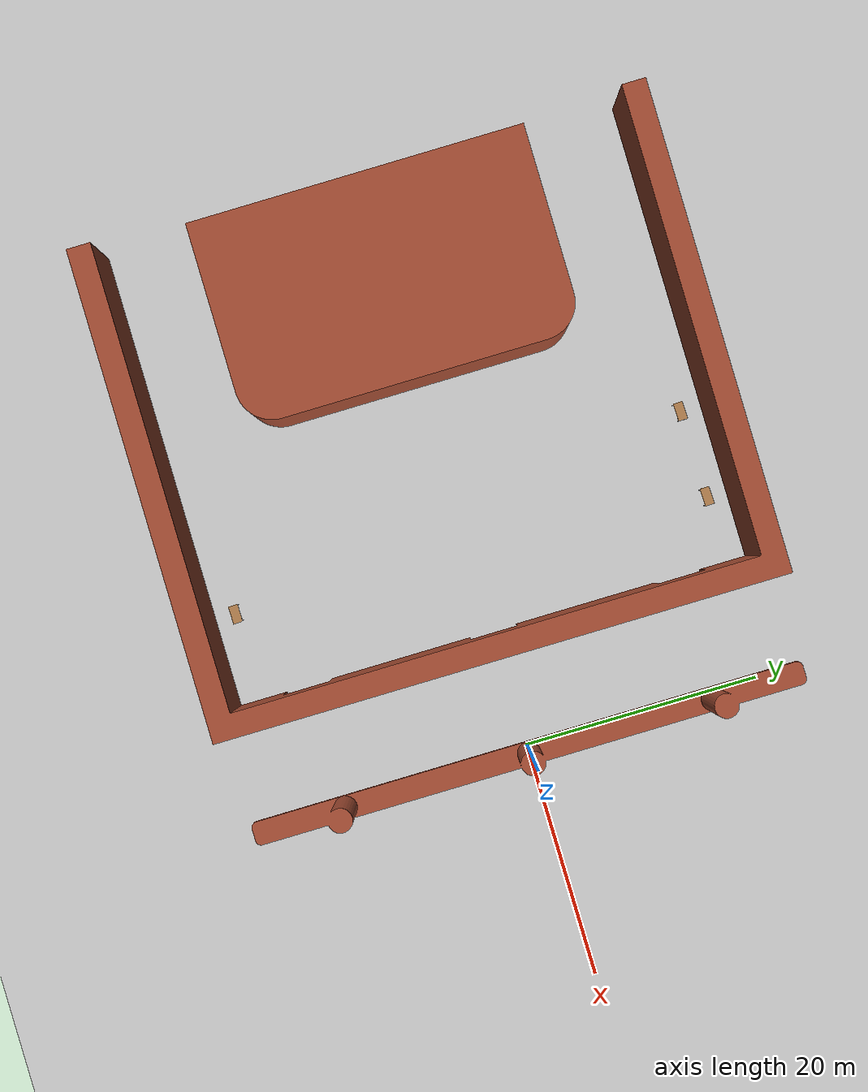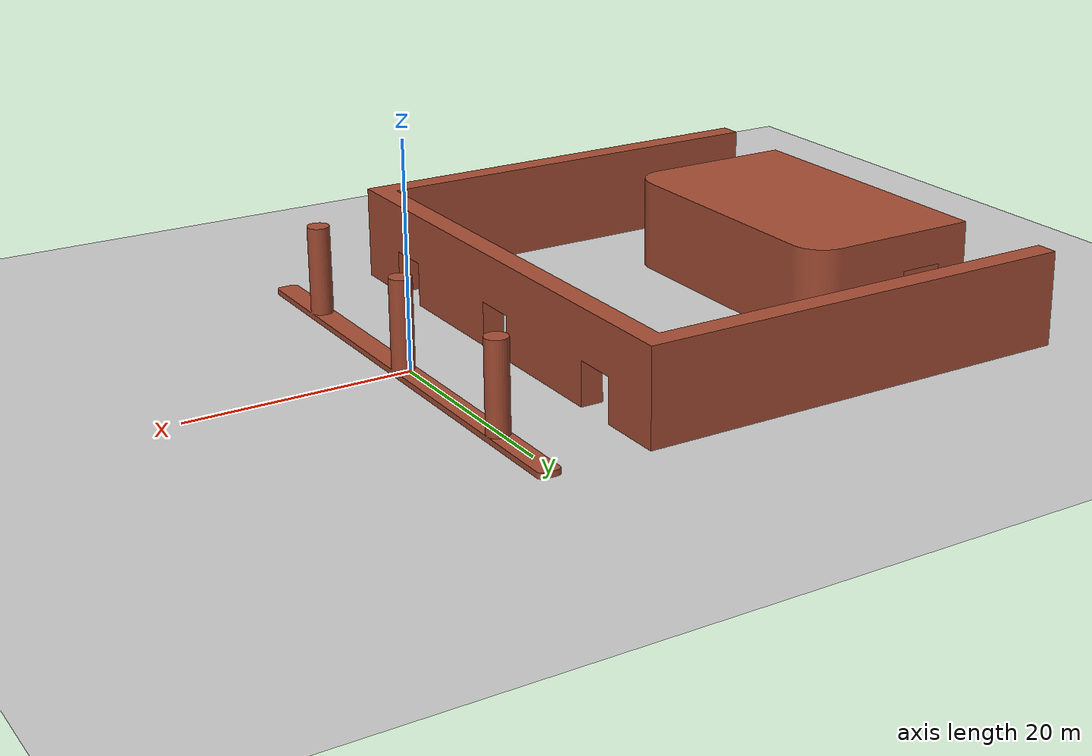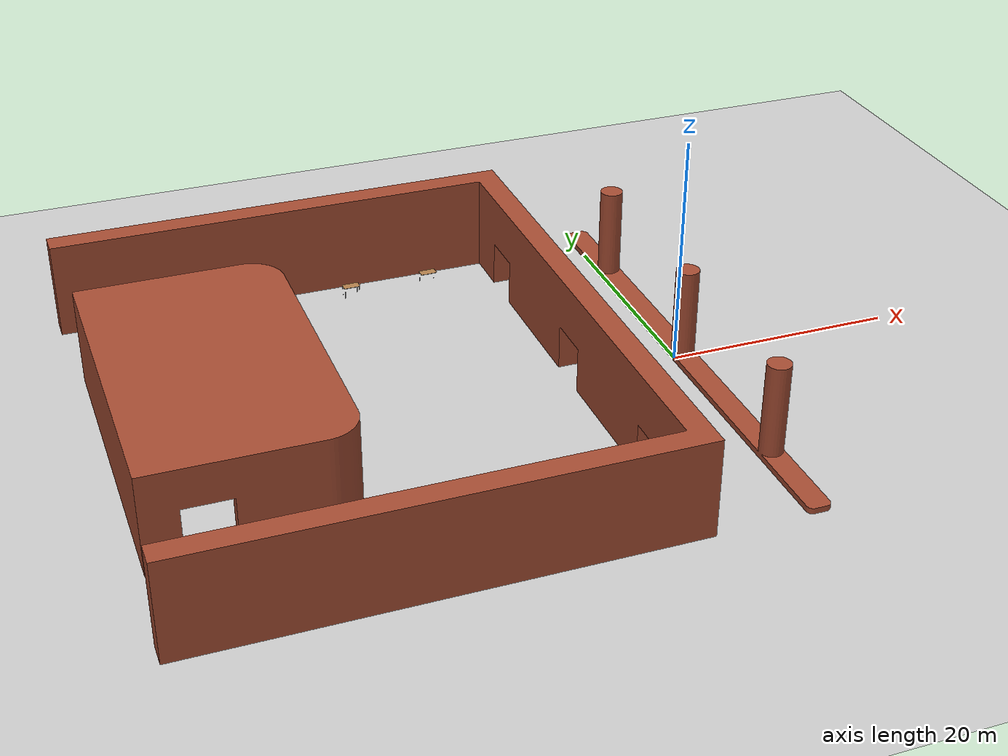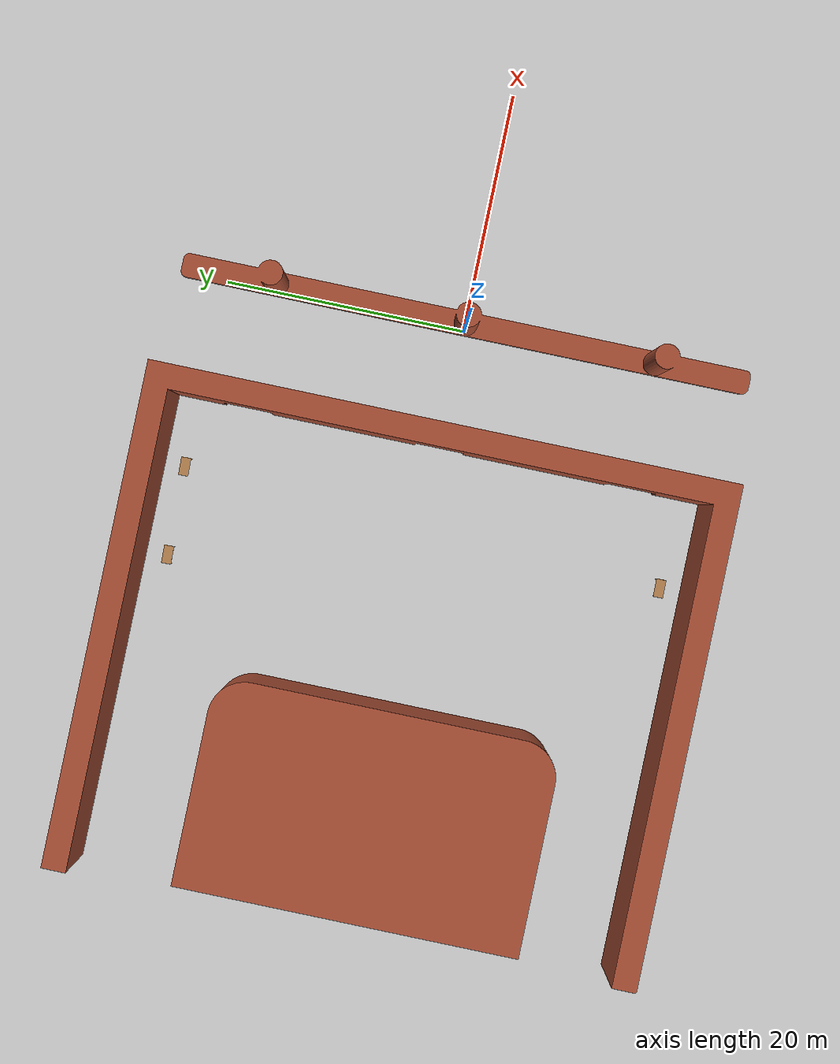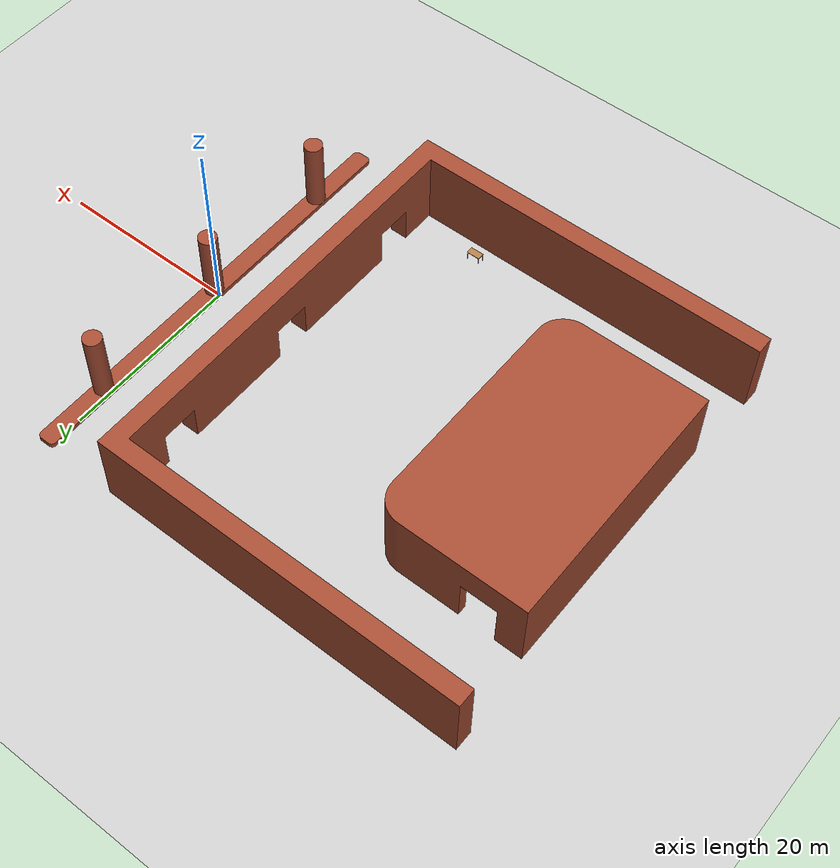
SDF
<sdf version="1.7">
 <world name="default">
  <light name="sun" type="directional">
   <pose>0 0 10 0 -0 0</pose>
   <diffuse>0.8 0.8 0.8 1</diffuse>
   <specular>0.2 0.2 0.2 1</specular>
   <attenuation>
    <range>1000</range>
    <constant>0.9</constant>
    <linear>0.01</linear>
    <quadratic>0.001</quadratic>
   </attenuation>
   <direction>-0.5 0.1 -0.9</direction>
   <spot><inner_angle>0</inner_angle><outer_angle>0</outer_angle><falloff>0</falloff></spot>
  </light>
  <model name="ground_plane">
   <static>1</static>
   <link name="link">
    <collision name="collision">
     <geometry><plane><normal>0 0 1</normal><size>100 100</size></plane></geometry>
     <surface><friction><ode><mu>100</mu><mu2>50</mu2></ode></friction></surface>
    </collision>
    <visual name="visual">
     <cast_shadows>0</cast_shadows>
     <geometry><plane><normal>0 0 1</normal><size>100 100</size></plane></geometry>
     <material>
      <script><uri>file://media/materials/scripts/gazebo.material</uri><name>Gazebo/Grey</name></script>
     </material>
    </visual>
    <velocity_decay><linear>0</linear><angular>0</angular></velocity_decay>
   </link>
  </model>
  <physics type="ode">
   <max_step_size>0.001</max_step_size>
   <real_time_factor>1</real_time_factor>
   <real_time_update_rate>1000</real_time_update_rate>
  </physics>
  <scene><ambient>0.4 0.4 0.4 1</ambient><background>0.7 0.7 0.7 1</background><shadows>1</shadows></scene>
  <spherical_coordinates>
   <surface_model>EARTH_WGS84</surface_model>
   <latitude_deg>0</latitude_deg>
   <longitude_deg>0</longitude_deg>
   <elevation>0</elevation>
   <heading_deg>0</heading_deg>
  </spherical_coordinates>
  <gravity>0 0 -9.8</gravity>
  <magnetic_field>6e-06 2.3e-05 -4.2e-05</magnetic_field>
  <atmosphere type="adiabatic"/>
  <model name="Hospital_Structure">
   <link name="link_2">
    <inertial>
     <mass>1</mass>
     <inertia>
      <ixx>0.166667</ixx>
      <ixy>0</ixy>
      <ixz>0</ixz>
      <iyy>0.166667</iyy>
      <iyz>0</iyz>
      <izz>0.166667</izz>
     </inertia>
    </inertial>
    <pose>0.868757 0.091977 0 0 -0 0</pose>
    <visual name="visual">
     <geometry>
      <mesh>
       <uri>/home/evintjh/catkin_ws/src/jackal_stuffs/jackal_simulator/jackal_gazebo/Media/models/OBJ/Intersection.obj</uri>
       <scale>1 1 1</scale>
      </mesh>
     </geometry>
     <material>
      <lighting>1</lighting>
      <script><uri>file://media/materials/scripts/gazebo.material</uri><name>Gazebo/Bricks</name></script>
      <shader type="pixel"><normal_map>__default__</normal_map></shader>
      <ambient>1 1 1 1</ambient>
      <diffuse>1 1 1 1</diffuse>
      <specular>0.2 0.2 0.2 1</specular>
      <emissive>0 0 0 1</emissive>
     </material>
    </visual>
    <collision name="collision">
     <geometry>
      <mesh>
       <uri>/home/evintjh/catkin_ws/src/jackal_stuffs/jackal_simulator/jackal_gazebo/Media/models/OBJ/Intersection.obj</uri>
       <scale>1 1 1</scale>
      </mesh>
     </geometry>
     <surface>
      <friction>
       <ode><mu>1</mu><mu2>1</mu2><fdir1>0 0 0</fdir1><slip1>0</slip1><slip2>0</slip2></ode>
       <torsional>
        <coefficient>1</coefficient>
        <patch_radius>0</patch_radius>
        <surface_radius>0</surface_radius>
        <use_patch_radius>1</use_patch_radius>
        <ode><slip>0</slip></ode>
       </torsional>
      </friction>
      <bounce><restitution_coefficient>0</restitution_coefficient><threshold>1e+06</threshold></bounce>
      <contact>
       <collide_without_contact>0</collide_without_contact>
       <collide_without_contact_bitmask>1</collide_without_contact_bitmask>
       <collide_bitmask>1</collide_bitmask>
       <ode>
        <soft_cfm>0</soft_cfm>
        <soft_erp>0.2</soft_erp>
        <kp>1e+13</kp>
        <kd>1</kd>
        <max_vel>0.01</max_vel>
        <min_depth>0</min_depth>
       </ode>
       <bullet>
        <split_impulse>1</split_impulse>
        <split_impulse_penetration_threshold>-0.01</split_impulse_penetration_threshold>
        <soft_cfm>0</soft_cfm>
        <soft_erp>0.2</soft_erp>
        <kp>1e+13</kp>
        <kd>1</kd>
       </bullet>
      </contact>
     </surface>
    </collision>
   </link>
   <link name="link_3">
    <inertial>
     <mass>1</mass>
     <inertia>
      <ixx>0.166667</ixx>
      <ixy>0</ixy>
      <ixz>0</ixz>
      <iyy>0.166667</iyy>
      <iyz>0</iyz>
      <izz>0.166667</izz>
     </inertia>
    </inertial>
    <pose>-0.791003 0.121727 0 0 -0 0</pose>
    <visual name="visual">
     <geometry>
      <mesh>
       <uri>/home/evintjh/catkin_ws/src/jackal_stuffs/jackal_simulator/jackal_gazebo/Media/models/OBJ/Exterior.obj</uri>
       <scale>1 1 1</scale>
      </mesh>
     </geometry>
     <material>
      <lighting>1</lighting>
      <script><uri>file://media/materials/scripts/gazebo.material</uri><name>Gazebo/Bricks</name></script>
      <shader type="pixel"><normal_map>__default__</normal_map></shader>
      <ambient>1 1 1 1</ambient>
      <diffuse>1 1 1 1</diffuse>
      <specular>0.2 0.2 0.2 1</specular>
      <emissive>0 0 0 1</emissive>
     </material>
    </visual>
    <collision name="collision">
     <geometry>
      <mesh>
       <uri>/home/evintjh/catkin_ws/src/jackal_stuffs/jackal_simulator/jackal_gazebo/Media/models/OBJ/Exterior.obj</uri>
       <scale>1 1 1</scale>
      </mesh>
     </geometry>
     <surface>
      <friction>
       <ode><mu>1</mu><mu2>1</mu2><fdir1>0 0 0</fdir1><slip1>0</slip1><slip2>0</slip2></ode>
       <torsional>
        <coefficient>1</coefficient>
        <patch_radius>0</patch_radius>
        <surface_radius>0</surface_radius>
        <use_patch_radius>1</use_patch_radius>
        <ode><slip>0</slip></ode>
       </torsional>
      </friction>
      <bounce><restitution_coefficient>0</restitution_coefficient><threshold>1e+06</threshold></bounce>
      <contact>
       <collide_without_contact>0</collide_without_contact>
       <collide_without_contact_bitmask>1</collide_without_contact_bitmask>
       <collide_bitmask>1</collide_bitmask>
       <ode>
        <soft_cfm>0</soft_cfm>
        <soft_erp>0.2</soft_erp>
        <kp>1e+13</kp>
        <kd>1</kd>
        <max_vel>0.01</max_vel>
        <min_depth>0</min_depth>
       </ode>
       <bullet>
        <split_impulse>1</split_impulse>
        <split_impulse_penetration_threshold>-0.01</split_impulse_penetration_threshold>
        <soft_cfm>0</soft_cfm>
        <soft_erp>0.2</soft_erp>
        <kp>1e+13</kp>
        <kd>1</kd>
       </bullet>
      </contact>
     </surface>
    </collision>
   </link>
   <link name="link_4">
    <inertial>
     <mass>1</mass>
     <inertia>
      <ixx>0.166667</ixx>
      <ixy>0</ixy>
      <ixz>0</ixz>
      <iyy>0.166667</iyy>
      <iyz>0</iyz>
      <izz>0.166667</izz>
     </inertia>
    </inertial>
    <pose>-0.077753 -0.213703 0 0 -0 0</pose>
    <visual name="visual">
     <geometry>
      <mesh>
       <uri>/home/evintjh/catkin_ws/src/jackal_stuffs/jackal_simulator/jackal_gazebo/Media/models/OBJ/Interior Room.obj</uri>
       <scale>1 1 1</scale>
      </mesh>
     </geometry>
     <material>
      <lighting>1</lighting>
      <script><uri>file://media/materials/scripts/gazebo.material</uri><name>Gazebo/Bricks</name></script>
      <shader type="pixel"><normal_map>__default__</normal_map></shader>
      <ambient>1 1 1 1</ambient>
      <diffuse>1 1 1 1</diffuse>
      <specular>0.2 0.2 0.2 1</specular>
      <emissive>0 0 0 1</emissive>
     </material>
    </visual>
    <collision name="collision">
     <geometry>
      <mesh>
       <uri>/home/evintjh/catkin_ws/src/jackal_stuffs/jackal_simulator/jackal_gazebo/Media/models/OBJ/Interior Room.obj</uri>
       <scale>1 1 1</scale>
      </mesh>
     </geometry>
     <surface>
      <friction>
       <ode><mu>1</mu><mu2>1</mu2><fdir1>0 0 0</fdir1><slip1>0</slip1><slip2>0</slip2></ode>
       <torsional>
        <coefficient>1</coefficient>
        <patch_radius>0</patch_radius>
        <surface_radius>0</surface_radius>
        <use_patch_radius>1</use_patch_radius>
        <ode><slip>0</slip></ode>
       </torsional>
      </friction>
      <bounce><restitution_coefficient>0</restitution_coefficient><threshold>1e+06</threshold></bounce>
      <contact>
       <collide_without_contact>0</collide_without_contact>
       <collide_without_contact_bitmask>1</collide_without_contact_bitmask>
       <collide_bitmask>1</collide_bitmask>
       <ode>
        <soft_cfm>0</soft_cfm>
        <soft_erp>0.2</soft_erp>
        <kp>1e+13</kp>
        <kd>1</kd>
        <max_vel>0.01</max_vel>
        <min_depth>0</min_depth>
       </ode>
       <bullet>
        <split_impulse>1</split_impulse>
        <split_impulse_penetration_threshold>-0.01</split_impulse_penetration_threshold>
        <soft_cfm>0</soft_cfm>
        <soft_erp>0.2</soft_erp>
        <kp>1e+13</kp>
        <kd>1</kd>
       </bullet>
      </contact>
     </surface>
    </collision>
   </link>
   <static>1</static>
   <pose>2.82804 3.88213 0 0 -0 0</pose>
  </model>
  <model name="Table">
   <static>1</static>
   <link name="link">
    <collision name="surface">
     <pose>0 0 1 0 -0 0</pose>
     <geometry><box><size>1.5 0.8 0.03</size></box></geometry>
     <surface><friction><ode><mu>0.6</mu><mu2>0.6</mu2></ode></friction></surface>
    </collision>
    <visual name="visual1">
     <pose>0 0 1 0 -0 0</pose>
     <geometry><box><size>1.5 0.8 0.03</size></box></geometry>
     <material>
      <diffuse>1 1 1 1</diffuse>
      <script><uri>file://media/materials/scripts/gazebo.material</uri><name>Gazebo/Wood</name></script>
      <pbr><metal><albedo_map>model://Table/Table_Diffuse.jpg</albedo_map></metal></pbr>
     </material>
    </visual>
    <collision name="front_left_leg">
     <pose>0.68 0.38 0.5 0 -0 0</pose>
     <geometry><cylinder><radius>0.02</radius><length>1</length></cylinder></geometry>
    </collision>
    <visual name="front_left_leg">
     <pose>0.68 0.38 0.5 0 -0 0</pose>
     <geometry><cylinder><radius>0.02</radius><length>1</length></cylinder></geometry>
     <material>
      <diffuse>0.5 0.5 0.5 1</diffuse>
      <script><uri>file://media/materials/scripts/gazebo.material</uri><name>Gazebo/Grey</name></script>
     </material>
    </visual>
    <collision name="front_right_leg">
     <pose>0.68 -0.38 0.5 0 -0 0</pose>
     <geometry><cylinder><radius>0.02</radius><length>1</length></cylinder></geometry>
    </collision>
    <visual name="front_right_leg">
     <pose>0.68 -0.38 0.5 0 -0 0</pose>
     <geometry><cylinder><radius>0.02</radius><length>1</length></cylinder></geometry>
     <material>
      <diffuse>0.5 0.5 0.5 1</diffuse>
      <script><uri>file://media/materials/scripts/gazebo.material</uri><name>Gazebo/Grey</name></script>
     </material>
    </visual>
    <collision name="back_right_leg">
     <pose>-0.68 -0.38 0.5 0 -0 0</pose>
     <geometry><cylinder><radius>0.02</radius><length>1</length></cylinder></geometry>
    </collision>
    <visual name="back_right_leg">
     <pose>-0.68 -0.38 0.5 0 -0 0</pose>
     <geometry><cylinder><radius>0.02</radius><length>1</length></cylinder></geometry>
     <material>
      <diffuse>0.5 0.5 0.5 1</diffuse>
      <script><uri>file://media/materials/scripts/gazebo.material</uri><name>Gazebo/Grey</name></script>
     </material>
    </visual>
    <collision name="back_left_leg">
     <pose>-0.68 0.38 0.5 0 -0 0</pose>
     <geometry><cylinder><radius>0.02</radius><length>1</length></cylinder></geometry>
    </collision>
    <visual name="back_left_leg">
     <pose>-0.68 0.38 0.5 0 -0 0</pose>
     <geometry><cylinder><radius>0.02</radius><length>1</length></cylinder></geometry>
     <material>
      <diffuse>0.5 0.5 0.5 1</diffuse>
      <script><uri>file://media/materials/scripts/gazebo.material</uri><name>Gazebo/Grey</name></script>
     </material>
    </visual>
   </link>
   <pose>-15.6692 20.2621 0 0 0 -3.11248</pose>
  </model>
  <model name="Table_clone">
   <static>1</static>
   <link name="link">
    <collision name="surface">
     <pose>0 0 1 0 -0 0</pose>
     <geometry><box><size>1.5 0.8 0.03</size></box></geometry>
     <surface><friction><ode><mu>0.6</mu><mu2>0.6</mu2></ode></friction></surface>
    </collision>
    <visual name="visual1">
     <pose>0 0 1 0 -0 0</pose>
     <geometry><box><size>1.5 0.8 0.03</size></box></geometry>
     <material>
      <diffuse>1 1 1 1</diffuse>
      <script><uri>file://media/materials/scripts/gazebo.material</uri><name>Gazebo/Wood</name></script>
      <pbr><metal><albedo_map>model://Table/Table_Diffuse.jpg</albedo_map></metal></pbr>
     </material>
    </visual>
    <collision name="front_left_leg">
     <pose>0.68 0.38 0.5 0 -0 0</pose>
     <geometry><cylinder><radius>0.02</radius><length>1</length></cylinder></geometry>
    </collision>
    <visual name="front_left_leg">
     <pose>0.68 0.38 0.5 0 -0 0</pose>
     <geometry><cylinder><radius>0.02</radius><length>1</length></cylinder></geometry>
     <material>
      <diffuse>0.5 0.5 0.5 1</diffuse>
      <script><uri>file://media/materials/scripts/gazebo.material</uri><name>Gazebo/Grey</name></script>
     </material>
    </visual>
    <collision name="front_right_leg">
     <pose>0.68 -0.38 0.5 0 -0 0</pose>
     <geometry><cylinder><radius>0.02</radius><length>1</length></cylinder></geometry>
    </collision>
    <visual name="front_right_leg">
     <pose>0.68 -0.38 0.5 0 -0 0</pose>
     <geometry><cylinder><radius>0.02</radius><length>1</length></cylinder></geometry>
     <material>
      <diffuse>0.5 0.5 0.5 1</diffuse>
      <script><uri>file://media/materials/scripts/gazebo.material</uri><name>Gazebo/Grey</name></script>
     </material>
    </visual>
    <collision name="back_right_leg">
     <pose>-0.68 -0.38 0.5 0 -0 0</pose>
     <geometry><cylinder><radius>0.02</radius><length>1</length></cylinder></geometry>
    </collision>
    <visual name="back_right_leg">
     <pose>-0.68 -0.38 0.5 0 -0 0</pose>
     <geometry><cylinder><radius>0.02</radius><length>1</length></cylinder></geometry>
     <material>
      <diffuse>0.5 0.5 0.5 1</diffuse>
      <script><uri>file://media/materials/scripts/gazebo.material</uri><name>Gazebo/Grey</name></script>
     </material>
    </visual>
    <collision name="back_left_leg">
     <pose>-0.68 0.38 0.5 0 -0 0</pose>
     <geometry><cylinder><radius>0.02</radius><length>1</length></cylinder></geometry>
    </collision>
    <visual name="back_left_leg">
     <pose>-0.68 0.38 0.5 0 -0 0</pose>
     <geometry><cylinder><radius>0.02</radius><length>1</length></cylinder></geometry>
     <material>
      <diffuse>0.5 0.5 0.5 1</diffuse>
      <script><uri>file://media/materials/scripts/gazebo.material</uri><name>Gazebo/Grey</name></script>
     </material>
    </visual>
   </link>
   <pose>-23.0707 20.1425 0 0 0 -3.11446</pose>
  </model>
  <model name="Table_clone_0">
   <static>1</static>
   <link name="link">
    <collision name="surface">
     <pose>0 0 1 0 -0 0</pose>
     <geometry><box><size>1.5 0.8 0.03</size></box></geometry>
     <surface><friction><ode><mu>0.6</mu><mu2>0.6</mu2></ode></friction></surface>
    </collision>
    <visual name="visual1">
     <pose>0 0 1 0 -0 0</pose>
     <geometry><box><size>1.5 0.8 0.03</size></box></geometry>
     <material>
      <diffuse>1 1 1 1</diffuse>
      <script><uri>file://media/materials/scripts/gazebo.material</uri><name>Gazebo/Wood</name></script>
      <pbr><metal><albedo_map>model://Table/Table_Diffuse.jpg</albedo_map></metal></pbr>
     </material>
    </visual>
    <collision name="front_left_leg">
     <pose>0.68 0.38 0.5 0 -0 0</pose>
     <geometry><cylinder><radius>0.02</radius><length>1</length></cylinder></geometry>
    </collision>
    <visual name="front_left_leg">
     <pose>0.68 0.38 0.5 0 -0 0</pose>
     <geometry><cylinder><radius>0.02</radius><length>1</length></cylinder></geometry>
     <material>
      <diffuse>0.5 0.5 0.5 1</diffuse>
      <script><uri>file://media/materials/scripts/gazebo.material</uri><name>Gazebo/Grey</name></script>
     </material>
    </visual>
    <collision name="front_right_leg">
     <pose>0.68 -0.38 0.5 0 -0 0</pose>
     <geometry><cylinder><radius>0.02</radius><length>1</length></cylinder></geometry>
    </collision>
    <visual name="front_right_leg">
     <pose>0.68 -0.38 0.5 0 -0 0</pose>
     <geometry><cylinder><radius>0.02</radius><length>1</length></cylinder></geometry>
     <material>
      <diffuse>0.5 0.5 0.5 1</diffuse>
      <script><uri>file://media/materials/scripts/gazebo.material</uri><name>Gazebo/Grey</name></script>
     </material>
    </visual>
    <collision name="back_right_leg">
     <pose>-0.68 -0.38 0.5 0 -0 0</pose>
     <geometry><cylinder><radius>0.02</radius><length>1</length></cylinder></geometry>
    </collision>
    <visual name="back_right_leg">
     <pose>-0.68 -0.38 0.5 0 -0 0</pose>
     <geometry><cylinder><radius>0.02</radius><length>1</length></cylinder></geometry>
     <material>
      <diffuse>0.5 0.5 0.5 1</diffuse>
      <script><uri>file://media/materials/scripts/gazebo.material</uri><name>Gazebo/Grey</name></script>
     </material>
    </visual>
    <collision name="back_left_leg">
     <pose>-0.68 0.38 0.5 0 -0 0</pose>
     <geometry><cylinder><radius>0.02</radius><length>1</length></cylinder></geometry>
    </collision>
    <visual name="back_left_leg">
     <pose>-0.68 0.38 0.5 0 -0 0</pose>
     <geometry><cylinder><radius>0.02</radius><length>1</length></cylinder></geometry>
     <material>
      <diffuse>0.5 0.5 0.5 1</diffuse>
      <script><uri>file://media/materials/scripts/gazebo.material</uri><name>Gazebo/Grey</name></script>
     </material>
    </visual>
   </link>
   <pose>-17.4221 -20.1802 0 0 0 -3.13332</pose>
  </model>
 </world>
</sdf>
